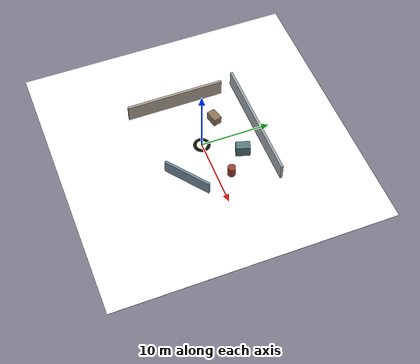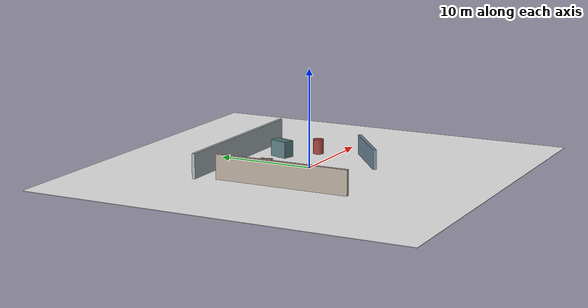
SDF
<?xml version="1.0"?>
<sdf version="1.9">
  <world name="simple_uav_test">
    <physics name="default_physics" type="ode">
      <max_step_size>0.004</max_step_size>
      <real_time_factor>1.0</real_time_factor>
    </physics>

    <plugin name="gz::sim::systems::Physics" filename="gz-sim-physics-system"/>
    <plugin name="gz::sim::systems::UserCommands" filename="gz-sim-user-commands-system"/>
    <plugin name="gz::sim::systems::SceneBroadcaster" filename="gz-sim-scene-broadcaster-system"/>
    <plugin name="gz::sim::systems::Sensors" filename="gz-sim-sensors-system">
      <render_engine>ogre2</render_engine>
    </plugin>

    <scene>
      <ambient>0.55 0.55 0.55 1</ambient>
      <background>0.72 0.78 0.86 1</background>
      <grid>false</grid>
      <shadows>true</shadows>
    </scene>

    <light name="sun" type="directional">
      <pose>0 0 20 0 0 0</pose>
      <cast_shadows>true</cast_shadows>
      <direction>-0.45 0.25 -0.86</direction>
      <diffuse>0.95 0.92 0.86 1</diffuse>
      <specular>0.35 0.35 0.32 1</specular>
    </light>

    <model name="textured_floor">
      <static>true</static>
      <pose>0 0 -0.025 0 0 0</pose>
      <link name="floor_link">
        <collision name="floor_collision">
          <geometry>
            <box>
              <size>40 40 0.05</size>
            </box>
          </geometry>
        </collision>
        <visual name="floor_visual">
          <geometry>
            <box>
              <size>40 40 0.05</size>
            </box>
          </geometry>
          <material>
            <diffuse>1 1 1 1</diffuse>
            <pbr>
              <metal>
                <albedo_map>model://simple_test_assets/materials/textures/checker_floor.png</albedo_map>
                <roughness>0.82</roughness>
              </metal>
            </pbr>
          </material>
        </visual>
      </link>
    </model>

    <model name="landing_pad_marker">
      <static>true</static>
      <pose>0 0 0.01 0 0 0</pose>
      <link name="pad_link">
        <visual name="pad_outer">
          <geometry>
            <cylinder>
              <radius>1.2</radius>
              <length>0.02</length>
            </cylinder>
          </geometry>
          <material>
            <ambient>0.05 0.05 0.05 1</ambient>
            <diffuse>0.05 0.05 0.05 1</diffuse>
          </material>
        </visual>
        <visual name="pad_inner">
          <pose>0 0 0.02 0 0 0</pose>
          <geometry>
            <cylinder>
              <radius>0.72</radius>
              <length>0.02</length>
            </cylinder>
          </geometry>
          <material>
            <ambient>0.95 0.95 0.8 1</ambient>
            <diffuse>0.95 0.95 0.8 1</diffuse>
          </material>
        </visual>
      </link>
    </model>

    <model name="test_walls">
      <static>true</static>
      <link name="walls_link">
        <collision name="north_wall_collision">
          <pose>0 8 1.25 0 0 0</pose>
          <geometry><box><size>18 0.35 2.5</size></box></geometry>
        </collision>
        <visual name="north_wall_visual">
          <pose>0 8 1.25 0 0 0</pose>
          <geometry><box><size>18 0.35 2.5</size></box></geometry>
          <material><ambient>0.62 0.66 0.68 1</ambient><diffuse>0.62 0.66 0.68 1</diffuse></material>
        </visual>

        <collision name="west_wall_collision">
          <pose>-8 -1 1.25 0 0 0</pose>
          <geometry><box><size>0.35 14 2.5</size></box></geometry>
        </collision>
        <visual name="west_wall_visual">
          <pose>-8 -1 1.25 0 0 0</pose>
          <geometry><box><size>0.35 14 2.5</size></box></geometry>
          <material><ambient>0.68 0.63 0.58 1</ambient><diffuse>0.68 0.63 0.58 1</diffuse></material>
        </visual>

        <collision name="short_wall_collision">
          <pose>5 -4 1.0 0 0 0.65</pose>
          <geometry><box><size>7 0.35 2.0</size></box></geometry>
        </collision>
        <visual name="short_wall_visual">
          <pose>5 -4 1.0 0 0 0.65</pose>
          <geometry><box><size>7 0.35 2.0</size></box></geometry>
          <material><ambient>0.45 0.55 0.62 1</ambient><diffuse>0.45 0.55 0.62 1</diffuse></material>
        </visual>
      </link>
    </model>

    <model name="simple_obstacles">
      <static>true</static>
      <link name="obstacle_link">
        <collision name="box_1_collision">
          <pose>-3.5 3.2 0.6 0 0 0.25</pose>
          <geometry><box><size>1.8 1.2 1.2</size></box></geometry>
        </collision>
        <visual name="box_1_visual">
          <pose>-3.5 3.2 0.6 0 0 0.25</pose>
          <geometry><box><size>1.8 1.2 1.2</size></box></geometry>
          <material><ambient>0.55 0.45 0.35 1</ambient><diffuse>0.55 0.45 0.35 1</diffuse></material>
        </visual>

        <collision name="box_2_collision">
          <pose>3.2 4.8 0.85 0 0 -0.3</pose>
          <geometry><box><size>1.2 2.0 1.7</size></box></geometry>
        </collision>
        <visual name="box_2_visual">
          <pose>3.2 4.8 0.85 0 0 -0.3</pose>
          <geometry><box><size>1.2 2.0 1.7</size></box></geometry>
          <material><ambient>0.35 0.48 0.5 1</ambient><diffuse>0.35 0.48 0.5 1</diffuse></material>
        </visual>

        <collision name="cylinder_collision">
          <pose>6 2 0.75 0 0 0</pose>
          <geometry><cylinder><radius>0.55</radius><length>1.5</length></cylinder></geometry>
        </collision>
        <visual name="cylinder_visual">
          <pose>6 2 0.75 0 0 0</pose>
          <geometry><cylinder><radius>0.55</radius><length>1.5</length></cylinder></geometry>
          <material><ambient>0.6 0.25 0.22 1</ambient><diffuse>0.6 0.25 0.22 1</diffuse></material>
        </visual>
      </link>
    </model>
  </world>
</sdf>
